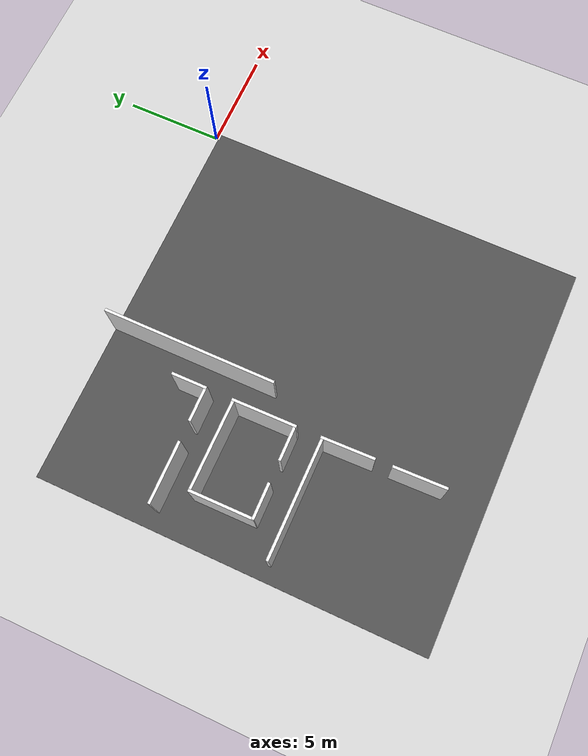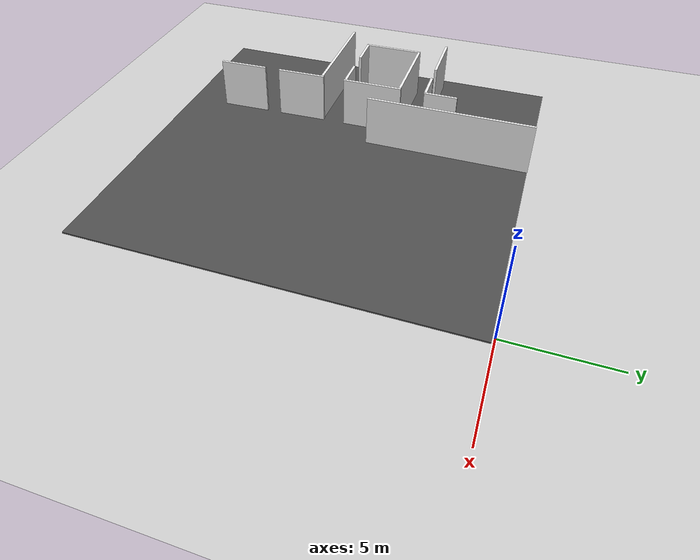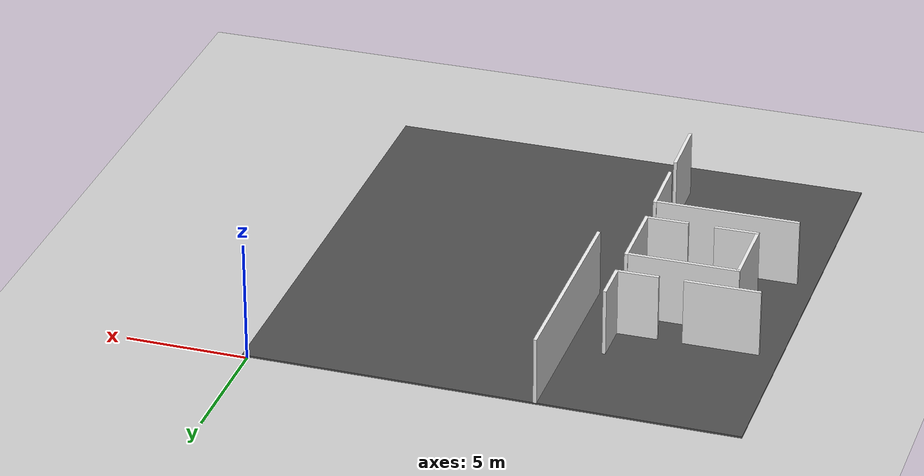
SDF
<sdf version="1.6">
 <world name="default">
  <model name="ground_plane">
   <static>1</static>
   <link name="link">
    <collision name="collision">
     <geometry><plane><normal>0 0 1</normal><size>100 100</size></plane></geometry>
     <surface><friction><ode><mu>100</mu><mu2>50</mu2></ode></friction></surface>
    </collision>
    <visual name="visual">
     <cast_shadows>0</cast_shadows>
     <geometry><plane><normal>0 0 1</normal><size>100 100</size></plane></geometry>
     <material>
      <script><uri>file://media/materials/scripts/gazebo.material</uri><name>Gazebo/Grey</name></script>
     </material>
    </visual>
    <velocity_decay><linear>0</linear><angular>0</angular></velocity_decay>
   </link>
  </model>
  <model name="asphalt_plane">
   <static>1</static>
   <link name="link">
    <collision name="collision"><geometry><box><size>20 20 0.1</size></box></geometry></collision>
    <visual name="visual">
     <cast_shadows>0</cast_shadows>
     <geometry><box><size>20 20 0.1</size></box></geometry>
     <material>
      <script>
       <uri>model://asphalt_plane/materials/scripts</uri>
       <uri>model://asphalt_plane/materials/textures</uri>
       <name>vrc/asphalt</name>
      </script>
     </material>
    </visual>
   </link>
   <pose>-9.73878 -10.1135 0 0 -0 0</pose>
  </model>
  <model name="white_wall7">
   <link name="link">
    <inertial>
     <mass>1</mass>
     <inertia>
      <ixx>0.166667</ixx>
      <ixy>0</ixy>
      <ixz>0</ixz>
      <iyy>0.166667</iyy>
      <iyz>0</iyz>
      <izz>0.166667</izz>
     </inertia>
    </inertial>
    <visual name="visual">
     <geometry><box><size>2.66208 0.139088 2.78993</size></box></geometry>
     <material>
      <script><name>Gazebo/White</name><uri>file://media/materials/scripts/gazebo.material</uri></script>
      <shader type="vertex"><normal_map>__default__</normal_map></shader>
      <ambient>1 1 1 1</ambient>
      <diffuse>1 1 1 1</diffuse>
      <specular>0 0 0 1</specular>
      <emissive>0 0 0 1</emissive>
     </material>
    </visual>
    <collision name="collision">
     <geometry><box><size>2.66208 0.139088 2.78993</size></box></geometry>
     <surface>
      <friction>
       <ode><mu>1</mu><mu2>1</mu2><fdir1>0 0 0</fdir1><slip1>0</slip1><slip2>0</slip2></ode>
       <torsional>
        <coefficient>1</coefficient>
        <patch_radius>0</patch_radius>
        <surface_radius>0</surface_radius>
        <use_patch_radius>1</use_patch_radius>
        <ode><slip>0</slip></ode>
       </torsional>
      </friction>
      <bounce><restitution_coefficient>0</restitution_coefficient><threshold>1e+06</threshold></bounce>
      <contact>
       <collide_without_contact>0</collide_without_contact>
       <collide_without_contact_bitmask>1</collide_without_contact_bitmask>
       <collide_bitmask>1</collide_bitmask>
       <ode>
        <soft_cfm>0</soft_cfm>
        <soft_erp>0.2</soft_erp>
        <kp>1e+13</kp>
        <kd>1</kd>
        <max_vel>0.01</max_vel>
        <min_depth>0</min_depth>
       </ode>
       <bullet>
        <split_impulse>1</split_impulse>
        <split_impulse_penetration_threshold>-0.01</split_impulse_penetration_threshold>
        <soft_cfm>0</soft_cfm>
        <soft_erp>0.2</soft_erp>
        <kp>1e+13</kp>
        <kd>1</kd>
       </bullet>
      </contact>
     </surface>
    </collision>
   </link>
   <static>1</static>
   <pose>-12.9108 -16.6468 1.43998 4e-06 1e-06 1.59932</pose>
  </model>
  <model name="white_wall7_clone">
   <link name="link">
    <inertial>
     <mass>1</mass>
     <inertia>
      <ixx>0.166667</ixx>
      <ixy>0</ixy>
      <ixz>0</ixz>
      <iyy>0.166667</iyy>
      <iyz>0</iyz>
      <izz>0.166667</izz>
     </inertia>
    </inertial>
    <visual name="visual">
     <geometry><box><size>2.66208 0.139088 2.78993</size></box></geometry>
     <material>
      <script><name>Gazebo/White</name><uri>file://media/materials/scripts/gazebo.material</uri></script>
      <shader type="vertex"><normal_map>__default__</normal_map></shader>
      <ambient>1 1 1 1</ambient>
      <diffuse>1 1 1 1</diffuse>
      <specular>0 0 0 1</specular>
      <emissive>0 0 0 1</emissive>
     </material>
    </visual>
    <collision name="collision">
     <geometry><box><size>2.66208 0.139088 2.78993</size></box></geometry>
     <surface>
      <friction>
       <ode><mu>1</mu><mu2>1</mu2><fdir1>0 0 0</fdir1><slip1>0</slip1><slip2>0</slip2></ode>
       <torsional>
        <coefficient>1</coefficient>
        <patch_radius>0</patch_radius>
        <surface_radius>0</surface_radius>
        <use_patch_radius>1</use_patch_radius>
        <ode><slip>0</slip></ode>
       </torsional>
      </friction>
      <bounce><restitution_coefficient>0</restitution_coefficient><threshold>1e+06</threshold></bounce>
      <contact>
       <collide_without_contact>0</collide_without_contact>
       <collide_without_contact_bitmask>1</collide_without_contact_bitmask>
       <collide_bitmask>1</collide_bitmask>
       <ode>
        <soft_cfm>0</soft_cfm>
        <soft_erp>0.2</soft_erp>
        <kp>1e+13</kp>
        <kd>1</kd>
        <max_vel>0.01</max_vel>
        <min_depth>0</min_depth>
       </ode>
       <bullet>
        <split_impulse>1</split_impulse>
        <split_impulse_penetration_threshold>-0.01</split_impulse_penetration_threshold>
        <soft_cfm>0</soft_cfm>
        <soft_erp>0.2</soft_erp>
        <kp>1e+13</kp>
        <kd>1</kd>
       </bullet>
      </contact>
     </surface>
    </collision>
   </link>
   <static>1</static>
   <pose>-13.0032 -13.1745 1.43998 4e-06 1e-06 1.59932</pose>
  </model>
  <model name="white_wall9">
   <link name="link">
    <inertial>
     <mass>1</mass>
     <inertia>
      <ixx>0.166667</ixx>
      <ixy>0</ixy>
      <ixz>0</ixz>
      <iyy>0.166667</iyy>
      <iyz>0</iyz>
      <izz>0.166667</izz>
     </inertia>
    </inertial>
    <visual name="visual">
     <geometry><box><size>6.01507 0.139088 2.78993</size></box></geometry>
     <material>
      <script><name>Gazebo/White</name><uri>file://media/materials/scripts/gazebo.material</uri></script>
      <shader type="vertex"><normal_map>__default__</normal_map></shader>
      <ambient>1 1 1 1</ambient>
      <diffuse>1 1 1 1</diffuse>
      <specular>0 0 0 1</specular>
      <emissive>0 0 0 1</emissive>
     </material>
    </visual>
    <collision name="collision">
     <geometry><box><size>6.01507 0.139088 2.78993</size></box></geometry>
     <surface>
      <friction>
       <ode><mu>1</mu><mu2>1</mu2><fdir1>0 0 0</fdir1><slip1>0</slip1><slip2>0</slip2></ode>
       <torsional>
        <coefficient>1</coefficient>
        <patch_radius>0</patch_radius>
        <surface_radius>0</surface_radius>
        <use_patch_radius>1</use_patch_radius>
        <ode><slip>0</slip></ode>
       </torsional>
      </friction>
      <bounce><restitution_coefficient>0</restitution_coefficient><threshold>1e+06</threshold></bounce>
      <contact>
       <collide_without_contact>0</collide_without_contact>
       <collide_without_contact_bitmask>1</collide_without_contact_bitmask>
       <collide_bitmask>1</collide_bitmask>
       <ode>
        <soft_cfm>0</soft_cfm>
        <soft_erp>0.2</soft_erp>
        <kp>1e+13</kp>
        <kd>1</kd>
        <max_vel>0.01</max_vel>
        <min_depth>0</min_depth>
       </ode>
       <bullet>
        <split_impulse>1</split_impulse>
        <split_impulse_penetration_threshold>-0.01</split_impulse_penetration_threshold>
        <soft_cfm>0</soft_cfm>
        <soft_erp>0.2</soft_erp>
        <kp>1e+13</kp>
        <kd>1</kd>
       </bullet>
      </contact>
     </surface>
    </collision>
   </link>
   <static>1</static>
   <pose>-15.9801 -11.9426 1.43994 -1e-06 4e-06 -1.6e-05</pose>
  </model>
  <model name="white_wall3_clone_clone_0_clone">
   <link name="link">
    <inertial>
     <mass>1</mass>
     <inertia>
      <ixx>0.166667</ixx>
      <ixy>0</ixy>
      <ixz>0</ixz>
      <iyy>0.166667</iyy>
      <iyz>0</iyz>
      <izz>0.166667</izz>
     </inertia>
    </inertial>
    <visual name="visual">
     <geometry><box><size>1.77743 0.139088 2.78993</size></box></geometry>
     <material>
      <script><name>Gazebo/White</name><uri>file://media/materials/scripts/gazebo.material</uri></script>
      <shader type="vertex"><normal_map>__default__</normal_map></shader>
      <ambient>1 1 1 1</ambient>
      <diffuse>1 1 1 1</diffuse>
      <specular>0 0 0 1</specular>
      <emissive>0 0 0 1</emissive>
     </material>
    </visual>
    <collision name="collision">
     <geometry><box><size>1.77743 0.139088 2.78993</size></box></geometry>
     <surface>
      <friction>
       <ode><mu>1</mu><mu2>1</mu2><fdir1>0 0 0</fdir1><slip1>0</slip1><slip2>0</slip2></ode>
       <torsional>
        <coefficient>1</coefficient>
        <patch_radius>0</patch_radius>
        <surface_radius>0</surface_radius>
        <use_patch_radius>1</use_patch_radius>
        <ode><slip>0</slip></ode>
       </torsional>
      </friction>
      <bounce><restitution_coefficient>0</restitution_coefficient><threshold>1e+06</threshold></bounce>
      <contact>
       <collide_without_contact>0</collide_without_contact>
       <collide_without_contact_bitmask>1</collide_without_contact_bitmask>
       <collide_bitmask>1</collide_bitmask>
       <ode>
        <soft_cfm>0</soft_cfm>
        <soft_erp>0.2</soft_erp>
        <kp>1e+13</kp>
        <kd>1</kd>
        <max_vel>0.01</max_vel>
        <min_depth>0</min_depth>
       </ode>
       <bullet>
        <split_impulse>1</split_impulse>
        <split_impulse_penetration_threshold>-0.01</split_impulse_penetration_threshold>
        <soft_cfm>0</soft_cfm>
        <soft_erp>0.2</soft_erp>
        <kp>1e+13</kp>
        <kd>1</kd>
       </bullet>
      </contact>
     </surface>
    </collision>
   </link>
   <static>1</static>
   <pose>-16.7378 -10.6099 1.43995 -1e-06 4e-06 0.011343</pose>
  </model>
  <model name="white_wall2_clone_clone_clone">
   <link name="link">
    <inertial>
     <mass>1</mass>
     <inertia>
      <ixx>0.166667</ixx>
      <ixy>0</ixy>
      <ixz>0</ixz>
      <iyy>0.166667</iyy>
      <iyz>0</iyz>
      <izz>0.166667</izz>
     </inertia>
    </inertial>
    <visual name="visual">
     <geometry><box><size>3.22688 0.139088 2.78993</size></box></geometry>
     <material>
      <script><name>Gazebo/White</name><uri>file://media/materials/scripts/gazebo.material</uri></script>
      <shader type="vertex"><normal_map>__default__</normal_map></shader>
      <ambient>1 1 1 1</ambient>
      <diffuse>1 1 1 1</diffuse>
      <specular>0 0 0 1</specular>
      <emissive>0 0 0 1</emissive>
     </material>
    </visual>
    <collision name="collision">
     <geometry><box><size>3.22688 0.139088 2.78993</size></box></geometry>
     <surface>
      <friction>
       <ode><mu>1</mu><mu2>1</mu2><fdir1>0 0 0</fdir1><slip1>0</slip1><slip2>0</slip2></ode>
       <torsional>
        <coefficient>1</coefficient>
        <patch_radius>0</patch_radius>
        <surface_radius>0</surface_radius>
        <use_patch_radius>1</use_patch_radius>
        <ode><slip>0</slip></ode>
       </torsional>
      </friction>
      <bounce><restitution_coefficient>0</restitution_coefficient><threshold>1e+06</threshold></bounce>
      <contact>
       <collide_without_contact>0</collide_without_contact>
       <collide_without_contact_bitmask>1</collide_without_contact_bitmask>
       <collide_bitmask>1</collide_bitmask>
       <ode>
        <soft_cfm>0</soft_cfm>
        <soft_erp>0.2</soft_erp>
        <kp>1e+13</kp>
        <kd>1</kd>
        <max_vel>0.01</max_vel>
        <min_depth>0</min_depth>
       </ode>
       <bullet>
        <split_impulse>1</split_impulse>
        <split_impulse_penetration_threshold>-0.01</split_impulse_penetration_threshold>
        <soft_cfm>0</soft_cfm>
        <soft_erp>0.2</soft_erp>
        <kp>1e+13</kp>
        <kd>1</kd>
       </bullet>
      </contact>
     </surface>
    </collision>
   </link>
   <static>1</static>
   <pose>-13.0754 -9.04535 1.43995 4e-06 1e-06 1.58352</pose>
  </model>
  <model name="white_wall3_clone_clone_0_clone_clone">
   <link name="link">
    <inertial>
     <mass>1</mass>
     <inertia>
      <ixx>0.166667</ixx>
      <ixy>0</ixy>
      <ixz>0</ixz>
      <iyy>0.166667</iyy>
      <iyz>0</iyz>
      <izz>0.166667</izz>
     </inertia>
    </inertial>
    <visual name="visual">
     <geometry><box><size>1.77743 0.139088 2.78993</size></box></geometry>
     <material>
      <script><name>Gazebo/White</name><uri>file://media/materials/scripts/gazebo.material</uri></script>
      <shader type="vertex"><normal_map>__default__</normal_map></shader>
      <ambient>1 1 1 1</ambient>
      <diffuse>1 1 1 1</diffuse>
      <specular>0 0 0 1</specular>
      <emissive>0 0 0 1</emissive>
     </material>
    </visual>
    <collision name="collision">
     <geometry><box><size>1.77743 0.139088 2.78993</size></box></geometry>
     <surface>
      <friction>
       <ode><mu>1</mu><mu2>1</mu2><fdir1>0 0 0</fdir1><slip1>0</slip1><slip2>0</slip2></ode>
       <torsional>
        <coefficient>1</coefficient>
        <patch_radius>0</patch_radius>
        <surface_radius>0</surface_radius>
        <use_patch_radius>1</use_patch_radius>
        <ode><slip>0</slip></ode>
       </torsional>
      </friction>
      <bounce><restitution_coefficient>0</restitution_coefficient><threshold>1e+06</threshold></bounce>
      <contact>
       <collide_without_contact>0</collide_without_contact>
       <collide_without_contact_bitmask>1</collide_without_contact_bitmask>
       <collide_bitmask>1</collide_bitmask>
       <ode>
        <soft_cfm>0</soft_cfm>
        <soft_erp>0.2</soft_erp>
        <kp>1e+13</kp>
        <kd>1</kd>
        <max_vel>0.01</max_vel>
        <min_depth>0</min_depth>
       </ode>
       <bullet>
        <split_impulse>1</split_impulse>
        <split_impulse_penetration_threshold>-0.01</split_impulse_penetration_threshold>
        <soft_cfm>0</soft_cfm>
        <soft_erp>0.2</soft_erp>
        <kp>1e+13</kp>
        <kd>1</kd>
       </bullet>
      </contact>
     </surface>
    </collision>
   </link>
   <static>1</static>
   <pose>-13.9168 -6.10329 1.43995 -1e-06 4e-06 0.011343</pose>
  </model>
  <model name="white_wall3_clone_clone_0_clone_clone_0">
   <link name="link">
    <inertial>
     <mass>1</mass>
     <inertia>
      <ixx>0.166667</ixx>
      <ixy>0</ixy>
      <ixz>0</ixz>
      <iyy>0.166667</iyy>
      <iyz>0</iyz>
      <izz>0.166667</izz>
     </inertia>
    </inertial>
    <visual name="visual">
     <geometry><box><size>1.77743 0.139088 2.78993</size></box></geometry>
     <material>
      <script><name>Gazebo/White</name><uri>file://media/materials/scripts/gazebo.material</uri></script>
      <shader type="vertex"><normal_map>__default__</normal_map></shader>
      <ambient>1 1 1 1</ambient>
      <diffuse>1 1 1 1</diffuse>
      <specular>0 0 0 1</specular>
      <emissive>0 0 0 1</emissive>
     </material>
    </visual>
    <collision name="collision">
     <geometry><box><size>1.77743 0.139088 2.78993</size></box></geometry>
     <surface>
      <friction>
       <ode><mu>1</mu><mu2>1</mu2><fdir1>0 0 0</fdir1><slip1>0</slip1><slip2>0</slip2></ode>
       <torsional>
        <coefficient>1</coefficient>
        <patch_radius>0</patch_radius>
        <surface_radius>0</surface_radius>
        <use_patch_radius>1</use_patch_radius>
        <ode><slip>0</slip></ode>
       </torsional>
      </friction>
      <bounce><restitution_coefficient>0</restitution_coefficient><threshold>1e+06</threshold></bounce>
      <contact>
       <collide_without_contact>0</collide_without_contact>
       <collide_without_contact_bitmask>1</collide_without_contact_bitmask>
       <collide_bitmask>1</collide_bitmask>
       <ode>
        <soft_cfm>0</soft_cfm>
        <soft_erp>0.2</soft_erp>
        <kp>1e+13</kp>
        <kd>1</kd>
        <max_vel>0.01</max_vel>
        <min_depth>0</min_depth>
       </ode>
       <bullet>
        <split_impulse>1</split_impulse>
        <split_impulse_penetration_threshold>-0.01</split_impulse_penetration_threshold>
        <soft_cfm>0</soft_cfm>
        <soft_erp>0.2</soft_erp>
        <kp>1e+13</kp>
        <kd>1</kd>
       </bullet>
      </contact>
     </surface>
    </collision>
   </link>
   <static>1</static>
   <pose>-13.1027 -5.25978 1.43995 4e-06 1e-06 1.57847</pose>
  </model>
  <model name="white_wall16_clone">
   <link name="link">
    <inertial>
     <mass>1</mass>
     <inertia>
      <ixx>0.166667</ixx>
      <ixy>0</ixy>
      <ixz>0</ixz>
      <iyy>0.166667</iyy>
      <iyz>0</iyz>
      <izz>0.166667</izz>
     </inertia>
    </inertial>
    <visual name="visual">
     <geometry><box><size>3.08239 0.139088 2.78993</size></box></geometry>
     <material>
      <script><name>Gazebo/White</name><uri>file://media/materials/scripts/gazebo.material</uri></script>
      <shader type="vertex"><normal_map>__default__</normal_map></shader>
      <ambient>1 1 1 1</ambient>
      <diffuse>1 1 1 1</diffuse>
      <specular>0 0 0 1</specular>
      <emissive>0 0 0 1</emissive>
     </material>
    </visual>
    <collision name="collision">
     <geometry><box><size>3.08239 0.139088 2.78993</size></box></geometry>
     <surface>
      <friction>
       <ode><mu>1</mu><mu2>1</mu2><fdir1>0 0 0</fdir1><slip1>0</slip1><slip2>0</slip2></ode>
       <torsional>
        <coefficient>1</coefficient>
        <patch_radius>0</patch_radius>
        <surface_radius>0</surface_radius>
        <use_patch_radius>1</use_patch_radius>
        <ode><slip>0</slip></ode>
       </torsional>
      </friction>
      <bounce><restitution_coefficient>0</restitution_coefficient><threshold>1e+06</threshold></bounce>
      <contact>
       <collide_without_contact>0</collide_without_contact>
       <collide_without_contact_bitmask>1</collide_without_contact_bitmask>
       <collide_bitmask>1</collide_bitmask>
       <ode>
        <soft_cfm>0</soft_cfm>
        <soft_erp>0.2</soft_erp>
        <kp>1e+13</kp>
        <kd>1</kd>
        <max_vel>0.01</max_vel>
        <min_depth>0</min_depth>
       </ode>
       <bullet>
        <split_impulse>1</split_impulse>
        <split_impulse_penetration_threshold>-0.01</split_impulse_penetration_threshold>
        <soft_cfm>0</soft_cfm>
        <soft_erp>0.2</soft_erp>
        <kp>1e+13</kp>
        <kd>1</kd>
       </bullet>
      </contact>
     </surface>
    </collision>
   </link>
   <static>1</static>
   <pose>-17.3414 -6.13134 1.43999 1e-06 -4e-06 -3.13575</pose>
  </model>
  <model name="white_wall3_clone_clone_0_clone_clone_1">
   <link name="link">
    <inertial>
     <mass>1</mass>
     <inertia>
      <ixx>0.166667</ixx>
      <ixy>0</ixy>
      <ixz>0</ixz>
      <iyy>0.166667</iyy>
      <iyz>0</iyz>
      <izz>0.166667</izz>
     </inertia>
    </inertial>
    <visual name="visual">
     <geometry><box><size>1.77743 0.139088 2.78993</size></box></geometry>
     <material>
      <script><name>Gazebo/White</name><uri>file://media/materials/scripts/gazebo.material</uri></script>
      <shader type="vertex"><normal_map>__default__</normal_map></shader>
      <ambient>1 1 1 1</ambient>
      <diffuse>1 1 1 1</diffuse>
      <specular>0 0 0 1</specular>
      <emissive>0 0 0 1</emissive>
     </material>
    </visual>
    <collision name="collision">
     <geometry><box><size>1.77743 0.139088 2.78993</size></box></geometry>
     <surface>
      <friction>
       <ode><mu>1</mu><mu2>1</mu2><fdir1>0 0 0</fdir1><slip1>0</slip1><slip2>0</slip2></ode>
       <torsional>
        <coefficient>1</coefficient>
        <patch_radius>0</patch_radius>
        <surface_radius>0</surface_radius>
        <use_patch_radius>1</use_patch_radius>
        <ode><slip>0</slip></ode>
       </torsional>
      </friction>
      <bounce><restitution_coefficient>0</restitution_coefficient><threshold>1e+06</threshold></bounce>
      <contact>
       <collide_without_contact>0</collide_without_contact>
       <collide_without_contact_bitmask>1</collide_without_contact_bitmask>
       <collide_bitmask>1</collide_bitmask>
       <ode>
        <soft_cfm>0</soft_cfm>
        <soft_erp>0.2</soft_erp>
        <kp>1e+13</kp>
        <kd>1</kd>
        <max_vel>0.01</max_vel>
        <min_depth>0</min_depth>
       </ode>
       <bullet>
        <split_impulse>1</split_impulse>
        <split_impulse_penetration_threshold>-0.01</split_impulse_penetration_threshold>
        <soft_cfm>0</soft_cfm>
        <soft_erp>0.2</soft_erp>
        <kp>1e+13</kp>
        <kd>1</kd>
       </bullet>
      </contact>
     </surface>
    </collision>
   </link>
   <static>1</static>
   <pose>-13.899 -10.5927 1.43995 -1e-06 4e-06 0.011343</pose>
  </model>
  <model name="white_wall2_clone_clone_clone_clone_1">
   <link name="link">
    <inertial>
     <mass>1</mass>
     <inertia>
      <ixx>0.166667</ixx>
      <ixy>0</ixy>
      <ixz>0</ixz>
      <iyy>0.166667</iyy>
      <iyz>0</iyz>
      <izz>0.166667</izz>
     </inertia>
    </inertial>
    <visual name="visual">
     <geometry><box><size>3.22688 0.139088 2.78993</size></box></geometry>
     <material>
      <script><name>Gazebo/White</name><uri>file://media/materials/scripts/gazebo.material</uri></script>
      <shader type="vertex"><normal_map>__default__</normal_map></shader>
      <ambient>1 1 1 1</ambient>
      <diffuse>1 1 1 1</diffuse>
      <specular>0 0 0 1</specular>
      <emissive>0 0 0 1</emissive>
     </material>
    </visual>
    <collision name="collision">
     <geometry><box><size>3.22688 0.139088 2.78993</size></box></geometry>
     <surface>
      <friction>
       <ode><mu>1</mu><mu2>1</mu2><fdir1>0 0 0</fdir1><slip1>0</slip1><slip2>0</slip2></ode>
       <torsional>
        <coefficient>1</coefficient>
        <patch_radius>0</patch_radius>
        <surface_radius>0</surface_radius>
        <use_patch_radius>1</use_patch_radius>
        <ode><slip>0</slip></ode>
       </torsional>
      </friction>
      <bounce><restitution_coefficient>0</restitution_coefficient><threshold>1e+06</threshold></bounce>
      <contact>
       <collide_without_contact>0</collide_without_contact>
       <collide_without_contact_bitmask>1</collide_without_contact_bitmask>
       <collide_bitmask>1</collide_bitmask>
       <ode>
        <soft_cfm>0</soft_cfm>
        <soft_erp>0.2</soft_erp>
        <kp>1e+13</kp>
        <kd>1</kd>
        <max_vel>0.01</max_vel>
        <min_depth>0</min_depth>
       </ode>
       <bullet>
        <split_impulse>1</split_impulse>
        <split_impulse_penetration_threshold>-0.01</split_impulse_penetration_threshold>
        <soft_cfm>0</soft_cfm>
        <soft_erp>0.2</soft_erp>
        <kp>1e+13</kp>
        <kd>1</kd>
       </bullet>
      </contact>
     </surface>
    </collision>
   </link>
   <static>1</static>
   <pose>-17.6064 -9.06447 1.43995 4e-06 1e-06 1.57959</pose>
  </model>
  <model name="white_wall25">
   <link name="link">
    <inertial>
     <mass>1</mass>
     <inertia>
      <ixx>0.166667</ixx>
      <ixy>0</ixy>
      <ixz>0</ixz>
      <iyy>0.166667</iyy>
      <iyz>0</iyz>
      <izz>0.166667</izz>
     </inertia>
    </inertial>
    <visual name="visual">
     <geometry><box><size>4.56813 0.139088 2.78993</size></box></geometry>
     <material>
      <script><name>Gazebo/White</name><uri>file://media/materials/scripts/gazebo.material</uri></script>
      <shader type="vertex"><normal_map>__default__</normal_map></shader>
      <ambient>1 1 1 1</ambient>
      <diffuse>1 1 1 1</diffuse>
      <specular>0 0 0 1</specular>
      <emissive>0 0 0 1</emissive>
     </material>
    </visual>
    <collision name="collision">
     <geometry><box><size>4.56813 0.139088 2.78993</size></box></geometry>
     <surface>
      <friction>
       <ode><mu>1</mu><mu2>1</mu2><fdir1>0 0 0</fdir1><slip1>0</slip1><slip2>0</slip2></ode>
       <torsional>
        <coefficient>1</coefficient>
        <patch_radius>0</patch_radius>
        <surface_radius>0</surface_radius>
        <use_patch_radius>1</use_patch_radius>
        <ode><slip>0</slip></ode>
       </torsional>
      </friction>
      <bounce><restitution_coefficient>0</restitution_coefficient><threshold>1e+06</threshold></bounce>
      <contact>
       <collide_without_contact>0</collide_without_contact>
       <collide_without_contact_bitmask>1</collide_without_contact_bitmask>
       <collide_bitmask>1</collide_bitmask>
       <ode>
        <soft_cfm>0</soft_cfm>
        <soft_erp>0.2</soft_erp>
        <kp>1e+13</kp>
        <kd>1</kd>
        <max_vel>0.01</max_vel>
        <min_depth>0</min_depth>
       </ode>
       <bullet>
        <split_impulse>1</split_impulse>
        <split_impulse_penetration_threshold>-0.01</split_impulse_penetration_threshold>
        <soft_cfm>0</soft_cfm>
        <soft_erp>0.2</soft_erp>
        <kp>1e+13</kp>
        <kd>1</kd>
       </bullet>
      </contact>
     </surface>
    </collision>
   </link>
   <static>1</static>
   <pose>-15.3863 -7.51451 1.43994 -1e-06 4e-06 -0.000759</pose>
  </model>
  <model name="white_wall29">
   <link name="link">
    <inertial>
     <mass>1</mass>
     <inertia>
      <ixx>0.166667</ixx>
      <ixy>0</ixy>
      <ixz>0</ixz>
      <iyy>0.166667</iyy>
      <iyz>0</iyz>
      <izz>0.166667</izz>
     </inertia>
    </inertial>
    <visual name="visual">
     <geometry><box><size>8.77073 0.139088 2.78993</size></box></geometry>
     <material>
      <script><name>Gazebo/White</name><uri>file://media/materials/scripts/gazebo.material</uri></script>
      <shader type="vertex"><normal_map>__default__</normal_map></shader>
      <ambient>1 1 1 1</ambient>
      <diffuse>1 1 1 1</diffuse>
      <specular>0 0 0 1</specular>
      <emissive>0 0 0 1</emissive>
     </material>
    </visual>
    <collision name="collision">
     <geometry><box><size>8.77073 0.139088 2.78993</size></box></geometry>
     <surface>
      <friction>
       <ode><mu>1</mu><mu2>1</mu2><fdir1>0 0 0</fdir1><slip1>0</slip1><slip2>0</slip2></ode>
       <torsional>
        <coefficient>1</coefficient>
        <patch_radius>0</patch_radius>
        <surface_radius>0</surface_radius>
        <use_patch_radius>1</use_patch_radius>
        <ode><slip>0</slip></ode>
       </torsional>
      </friction>
      <bounce><restitution_coefficient>0</restitution_coefficient><threshold>1e+06</threshold></bounce>
      <contact>
       <collide_without_contact>0</collide_without_contact>
       <collide_without_contact_bitmask>1</collide_without_contact_bitmask>
       <collide_bitmask>1</collide_bitmask>
       <ode>
        <soft_cfm>0</soft_cfm>
        <soft_erp>0.2</soft_erp>
        <kp>1e+13</kp>
        <kd>1</kd>
        <max_vel>0.01</max_vel>
        <min_depth>0</min_depth>
       </ode>
       <bullet>
        <split_impulse>1</split_impulse>
        <split_impulse_penetration_threshold>-0.01</split_impulse_penetration_threshold>
        <soft_cfm>0</soft_cfm>
        <soft_erp>0.2</soft_erp>
        <kp>1e+13</kp>
        <kd>1</kd>
       </bullet>
      </contact>
     </surface>
    </collision>
   </link>
   <static>1</static>
   <pose>-11.5983 -4.4805 1.43998 4e-06 1e-06 1.57381</pose>
  </model>
 </world>
</sdf>
